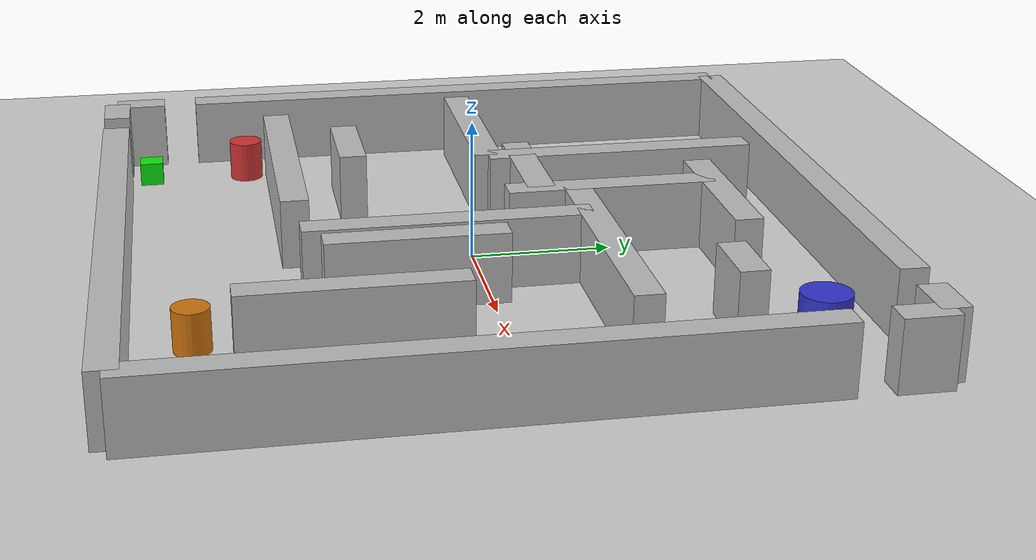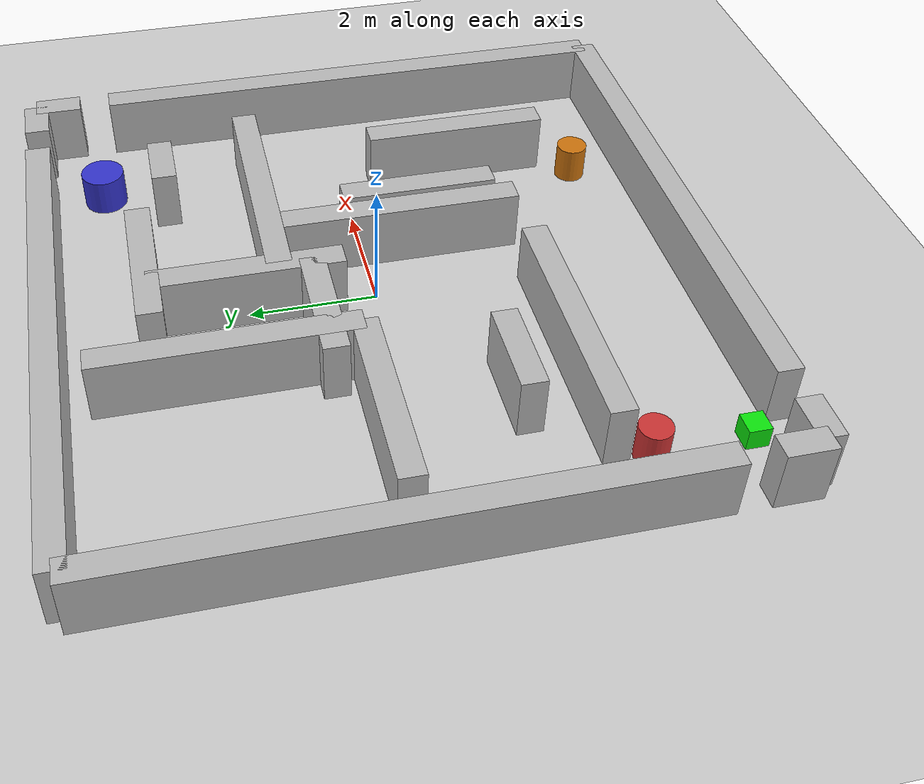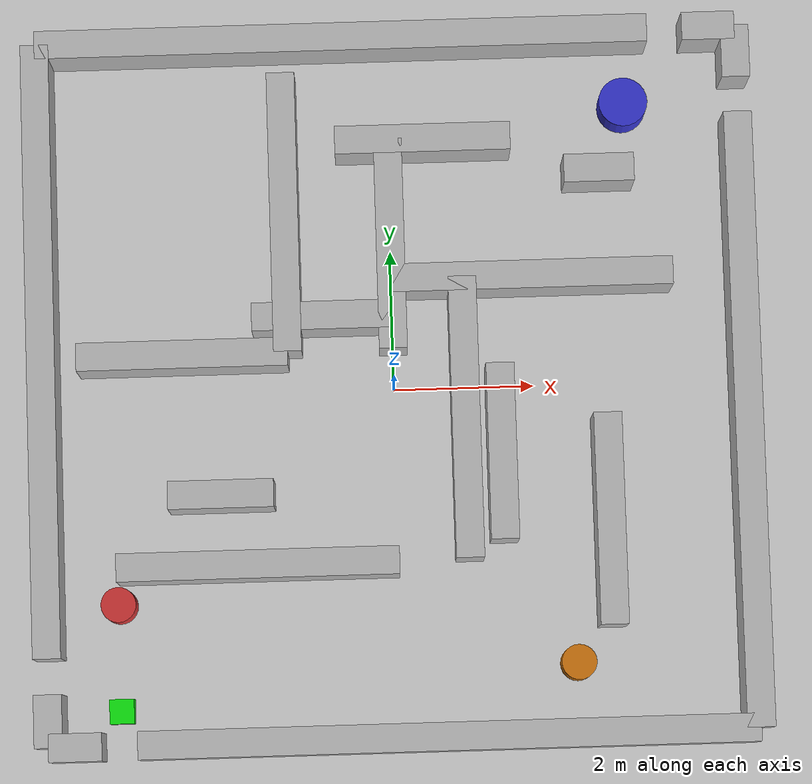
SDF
<?xml version="1.0" ?>
<sdf version="1.6">
<world name="maze_world">

  <!-- Layout values: maze_scale=0.5 in x/y; wall_thickness=0.4 m. -->

  <include>
    <uri>model://sun</uri>
  </include>

  <include>
    <uri>model://ground_plane</uri>
  </include>

  <!-- 外围墙 -->

  <!-- 北墙分为两段，中心在 x=4 处留出小缺口（入口） -->
  <model name="wall_north_left">
    <static>true</static>
    <link name="link">
      <collision name="collision">
        <geometry><box><size>8.75 0.4 1</size></box></geometry>
      </collision>
      <visual name="visual">
        <geometry><box><size>8.75 0.4 1</size></box></geometry>
      </visual>
    </link>
    <pose>-0.625 5 0.5 0 0 0</pose>
  </model>

  <model name="wall_north_right">
    <static>true</static>
    <link name="link">
      <collision name="collision">
        <geometry><box><size>0.75 0.4 1</size></box></geometry>
      </collision>
      <visual name="visual">
        <geometry><box><size>0.75 0.4 1</size></box></geometry>
      </visual>
    </link>
    <pose>4.625 5 0.5 0 0 0</pose>
  </model>

  <!-- 南墙在 x=-4 处留出缺口（入口） -->
  <model name="wall_south_left">
    <static>true</static>
    <link name="link">
      <collision name="collision">
        <geometry><box><size>0.75 0.4 1</size></box></geometry>
      </collision>
      <visual name="visual">
        <geometry><box><size>0.75 0.4 1</size></box></geometry>
      </visual>
    </link>
    <pose>-4.625 -5 0.5 0 0 0</pose>
  </model>

  <model name="wall_south_right">
    <static>true</static>
    <link name="link">
      <collision name="collision">
        <geometry><box><size>8.75 0.4 1</size></box></geometry>
      </collision>
      <visual name="visual">
        <geometry><box><size>8.75 0.4 1</size></box></geometry>
      </visual>
    </link>
    <pose>0.625 -5 0.5 0 0 0</pose>
  </model>

  <!-- 东墙分段，y=4 处留缺口（与北墙的缺口在同一对角） -->
  <model name="wall_east_bottom">
    <static>true</static>
    <link name="link">
      <collision name="collision">
        <geometry><box><size>0.4 8.75 1</size></box></geometry>
      </collision>
      <visual name="visual">
        <geometry><box><size>0.4 8.75 1</size></box></geometry>
      </visual>
    </link>
    <pose>5 -0.625 0.5 0 0 0</pose>
  </model>

  <model name="wall_east_top">
    <static>true</static>
    <link name="link">
      <collision name="collision">
        <geometry><box><size>0.4 0.75 1</size></box></geometry>
      </collision>
      <visual name="visual">
        <geometry><box><size>0.4 0.75 1</size></box></geometry>
      </visual>
    </link>
    <pose>5 4.625 0.5 0 0 0</pose>
  </model>

  <!-- 西墙分段，y=-4 处留缺口（与南墙的缺口在同一对角） -->
  <model name="wall_west_bottom">
    <static>true</static>
    <link name="link">
      <collision name="collision">
        <geometry><box><size>0.4 0.75 1</size></box></geometry>
      </collision>
      <visual name="visual">
        <geometry><box><size>0.4 0.75 1</size></box></geometry>
      </visual>
    </link>
    <pose>-5 -4.625 0.5 0 0 0</pose>
  </model>

  <model name="wall_west_top">
    <static>true</static>
    <link name="link">
      <collision name="collision">
        <geometry><box><size>0.4 8.75 1</size></box></geometry>
      </collision>
      <visual name="visual">
        <geometry><box><size>0.4 8.75 1</size></box></geometry>
      </visual>
    </link>
    <pose>-5 0.625 0.5 0 0 0</pose>
  </model>

  <!-- 内部迷宫墙 -->

  <model name="maze_wall1">
    <static>true</static>
    <link name="link">
      <collision name="collision">
        <geometry><box><size>4 0.4 1</size></box></geometry>
      </collision>
      <visual name="visual">
        <geometry><box><size>4 0.4 1</size></box></geometry>
      </visual>
    </link>
    <pose>-2 -2.5 0.5 0 0 0</pose>
  </model>

  <model name="maze_wall2">
    <static>true</static>
    <link name="link">
      <collision name="collision">
        <geometry><box><size>0.4 4 1</size></box></geometry>
      </collision>
      <visual name="visual">
        <geometry><box><size>0.4 4 1</size></box></geometry>
      </visual>
    </link>
    <pose>1 -0.5 0.5 0 0 0</pose>
  </model>

  <model name="maze_wall3">
    <static>true</static>
    <link name="link">
      <collision name="collision">
        <geometry><box><size>4 0.4 1</size></box></geometry>
      </collision>
      <visual name="visual">
        <geometry><box><size>4 0.4 1</size></box></geometry>
      </visual>
    </link>
    <pose>2 1.5 0.5 0 0 0</pose>
  </model>

  <model name="maze_wall4">
    <static>true</static>
    <link name="link">
      <collision name="collision">
        <geometry><box><size>0.4 4 1</size></box></geometry>
      </collision>
      <visual name="visual">
        <geometry><box><size>0.4 4 1</size></box></geometry>
      </visual>
    </link>
    <pose>-1.5 2.5 0.5 0 0 0</pose>
  </model>

  <model name="maze_wall5">
    <static>true</static>
    <link name="link">
      <collision name="collision">
        <geometry><box><size>3 0.4 1</size></box></geometry>
      </collision>
      <visual name="visual">
        <geometry><box><size>3 0.4 1</size></box></geometry>
      </visual>
    </link>
    <pose>-3 0.5 0.5 0 0 0</pose>
  </model>

  <model name="maze_wall6">
    <static>true</static>
    <link name="link">
      <collision name="collision">
        <geometry><box><size>0.4 3 1</size></box></geometry>
      </collision>
      <visual name="visual">
        <geometry><box><size>0.4 3 1</size></box></geometry>
      </visual>
    </link>
    <pose>3 -2 0.5 0 0 0</pose>
  </model>

  <model name="maze_wall7">
    <static>true</static>
    <link name="link">
      <collision name="collision">
        <geometry><box><size>2.5 0.4 1</size></box></geometry>
      </collision>
      <visual name="visual">
        <geometry><box><size>2.5 0.4 1</size></box></geometry>
      </visual>
    </link>
    <pose>0.5 3.5 0.5 0 0 0</pose>
  </model>

  <!-- 新增内部墙以增加复杂度 -->
  <model name="maze_wall8">
    <static>true</static>
    <link name="link">
      <collision name="collision">
        <geometry><box><size>0.4 3 1</size></box></geometry>
      </collision>
      <visual name="visual">
        <geometry><box><size>0.4 3 1</size></box></geometry>
      </visual>
    </link>
    <pose>0 2 0.5 0 0 0</pose>
  </model>

  <model name="maze_wall9">
    <static>true</static>
    <link name="link">
      <collision name="collision">
        <geometry><box><size>2 0.4 1</size></box></geometry>
      </collision>
      <visual name="visual">
        <geometry><box><size>2 0.4 1</size></box></geometry>
      </visual>
    </link>
    <pose>-1 1 0.5 0 0 0</pose>
  </model>

  <model name="maze_wall10">
    <static>true</static>
    <link name="link">
      <collision name="collision">
        <geometry><box><size>0.4 2.5 1</size></box></geometry>
      </collision>
      <visual name="visual">
        <geometry><box><size>0.4 2.5 1</size></box></geometry>
      </visual>
    </link>
    <pose>1.5 -1 0.5 0 0 0</pose>
  </model>

  <model name="maze_wall11">
    <static>true</static>
    <link name="link">
      <collision name="collision">
        <geometry><box><size>1.5 0.4 1</size></box></geometry>
      </collision>
      <visual name="visual">
        <geometry><box><size>1.5 0.4 1</size></box></geometry>
      </visual>
    </link>
    <pose>-2.5 -1.5 0.5 0 0 0</pose>
  </model>

  <model name="maze_wall12">
    <static>true</static>
    <link name="link">
      <collision name="collision">
        <geometry><box><size>1 0.4 1</size></box></geometry>
      </collision>
      <visual name="visual">
        <geometry><box><size>1 0.4 1</size></box></geometry>
      </visual>
    </link>
    <pose>3 3 0.5 0 0 0</pose>
  </model>

  <!-- Green visual goal: placed in the southwest corner opposite the robot spawn. -->
  <model name="green_goal">
    <static>true</static>
    <link name="link">
      <collision name="collision">
        <geometry>
          <box><size>0.35 0.35 0.35</size></box>
        </geometry>
      </collision>
      <visual name="visual">
        <geometry>
          <box><size>0.35 0.35 0.35</size></box></geometry>
        <material>
          <ambient>0.05 0.9 0.05 1</ambient>
          <diffuse>0.05 0.9 0.05 1</diffuse>
          <specular>0.1 0.1 0.1 1</specular>
        </material>
      </visual>
    </link>
    <pose>-4.0 -4.5 0.175 0 0 0</pose>
  </model>

  <!-- Dynamic obstacles placeholders: created so controllers can update their ModelState -->
  <model name="dynamic_obstacle_1">
    <link name="link">
      <collision name="collision">
        <geometry>
          <cylinder>
            <radius>0.25</radius>
            <length>0.6</length>
          </cylinder>
        </geometry>
      </collision>
      <visual name="visual">
        <geometry>
          <cylinder>
            <radius>0.25</radius>
            <length>0.6</length>
          </cylinder>
        </geometry>
        <material>
          <ambient>0.8 0.2 0.2 1</ambient>
          <diffuse>0.8 0.2 0.2 1</diffuse>
        </material>
      </visual>
    </link>
    <pose>-4 -3 0.3 0 0 0</pose>
  </model>

  <model name="dynamic_obstacle_2">
    <link name="link">
      <collision name="collision">
        <geometry>
          <cylinder>
            <radius>0.25</radius>
            <length>0.6</length>
          </cylinder>
        </geometry>
      </collision>
      <visual name="visual">
        <geometry>
          <cylinder>
            <radius>0.25</radius>
            <length>0.6</length>
          </cylinder>
        </geometry>
        <material>
          <ambient>0.8 0.45 0.05 1</ambient>
          <diffuse>0.8 0.45 0.05 1</diffuse>
        </material>
      </visual>
    </link>
    <pose>2.5 -4 0.3 0 0 0</pose>
  </model>

  <model name="dynamic_obstacle_3">
    <link name="link">
      <collision name="collision">
        <geometry>
          <cylinder>
            <radius>0.35</radius>
            <length>0.6</length>
          </cylinder>
        </geometry>
      </collision>
      <visual name="visual">
        <geometry>
          <cylinder>
            <radius>0.35</radius>
            <length>0.6</length>
          </cylinder>
        </geometry>
        <material>
          <ambient>0.2 0.2 0.8 1</ambient>
          <diffuse>0.2 0.2 0.8 1</diffuse>
        </material>
      </visual>
    </link>
    <pose>3.4 4 0.3 0 0 0</pose>
  </model>

</world>
</sdf>
